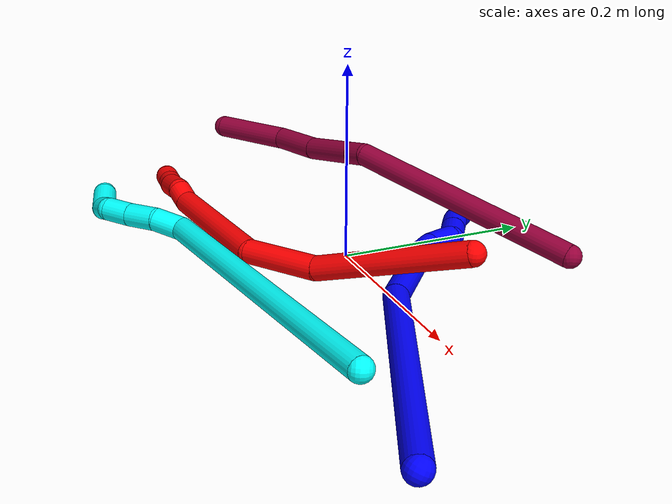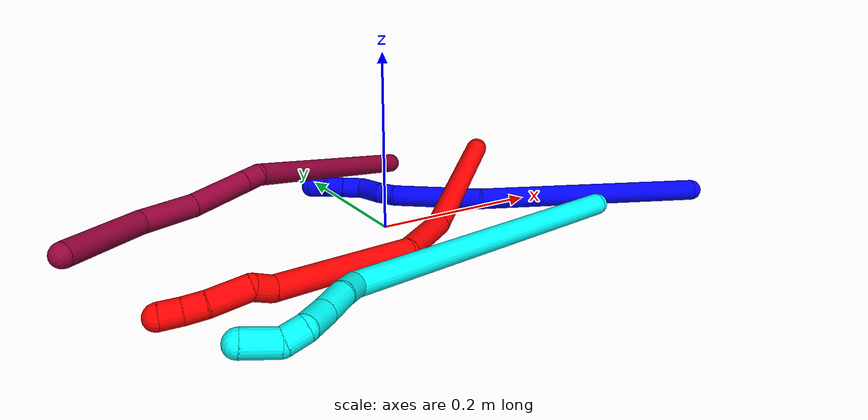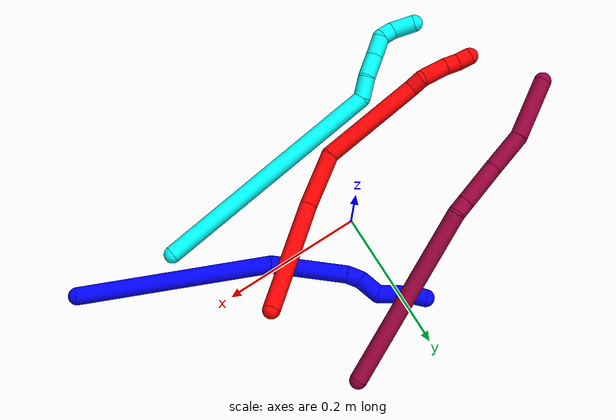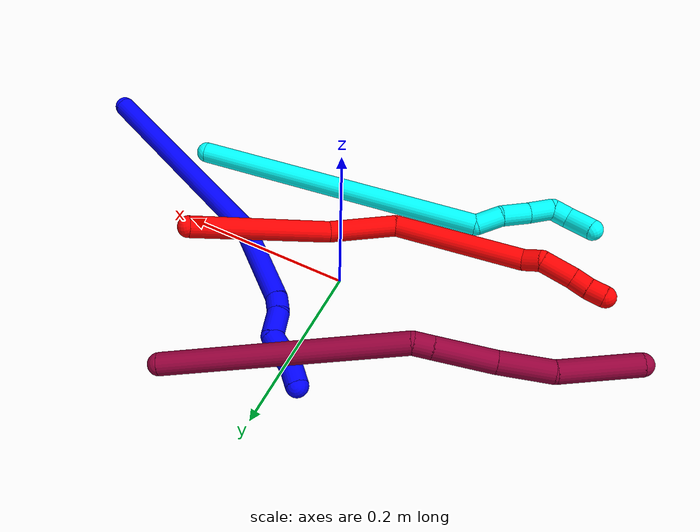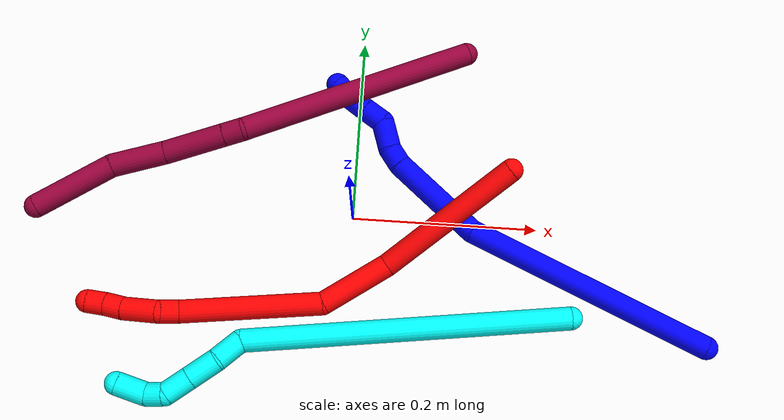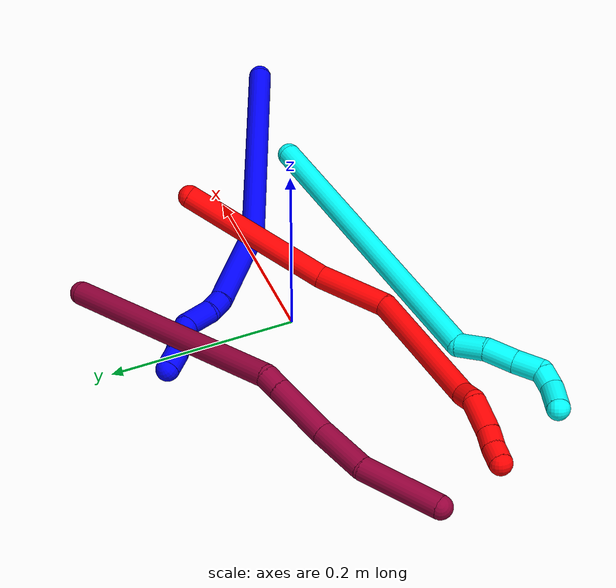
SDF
<sdf version="1.7">
 <world name="default">
  <model name="1">
   <static>0</static>
   <link name="1">
    <collision name="collision-cylinder-e_1_1_4">
     <pose>-0.116597 0.062584 -0.035989 -2.09267 -1.01639 1.53292</pose>
     <geometry><cylinder><radius>0.0125</radius><length>0.274276</length></cylinder></geometry>
     <surface>
      <friction><ode><mu>1.16</mu><mu2>1.16</mu2><slip1>0</slip1><slip2>0</slip2></ode></friction>
      <contact><ode><kp>1e+06</kp><kd>1</kd><max_vel>0</max_vel><min_depth>0.001</min_depth></ode></contact>
     </surface>
    </collision>
    <visual name="visual-cylinder-e_1_1_4">
     <pose>-0.116597 0.062584 -0.035989 -2.09267 -1.01639 1.53292</pose>
     <geometry><cylinder><radius>0.0125</radius><length>0.274276</length></cylinder></geometry>
     <material><ambient>0 0 1 1</ambient></material>
    </visual>
    <collision name="collision-cylinder-e_2_4_5">
     <pose>-0.281978 0.135313 -0.091669 -2.66589 -1.14458 2.4217</pose>
     <geometry><cylinder><radius>0.0125</radius><length>0.107154</length></cylinder></geometry>
     <surface>
      <friction><ode><mu>1.16</mu><mu2>1.16</mu2><slip1>0</slip1><slip2>0</slip2></ode></friction>
      <contact><ode><kp>1e+06</kp><kd>1</kd><max_vel>0</max_vel><min_depth>0.001</min_depth></ode></contact>
     </surface>
    </collision>
    <visual name="visual-cylinder-e_2_4_5">
     <pose>-0.281978 0.135313 -0.091669 -2.66589 -1.14458 2.4217</pose>
     <geometry><cylinder><radius>0.0125</radius><length>0.107154</length></cylinder></geometry>
     <material><ambient>0 0 1 1</ambient></material>
    </visual>
    <collision name="collision-cylinder-e_3_5_6">
     <pose>-0.339688 0.145139 -0.116277 3.07688 -1.06649 -3.03204</pose>
     <geometry><cylinder><radius>0.0125</radius><length>0.020391</length></cylinder></geometry>
     <surface>
      <friction><ode><mu>1.16</mu><mu2>1.16</mu2><slip1>0</slip1><slip2>0</slip2></ode></friction>
      <contact><ode><kp>1e+06</kp><kd>1</kd><max_vel>0</max_vel><min_depth>0.001</min_depth></ode></contact>
     </surface>
    </collision>
    <visual name="visual-cylinder-e_3_5_6">
     <pose>-0.339688 0.145139 -0.116277 3.07688 -1.06649 -3.03204</pose>
     <geometry><cylinder><radius>0.0125</radius><length>0.020391</length></cylinder></geometry>
     <material><ambient>0 0 1 1</ambient></material>
    </visual>
    <collision name="collision-cylinder-e_4_6_7">
     <pose>-0.36118 0.139467 -0.129032 2.54247 -0.923789 -2.03098</pose>
     <geometry><cylinder><radius>0.0125</radius><length>0.031495</length></cylinder></geometry>
     <surface>
      <friction><ode><mu>1.16</mu><mu2>1.16</mu2><slip1>0</slip1><slip2>0</slip2></ode></friction>
      <contact><ode><kp>1e+06</kp><kd>1</kd><max_vel>0</max_vel><min_depth>0.001</min_depth></ode></contact>
     </surface>
    </collision>
    <visual name="visual-cylinder-e_4_6_7">
     <pose>-0.36118 0.139467 -0.129032 2.54247 -0.923789 -2.03098</pose>
     <geometry><cylinder><radius>0.0125</radius><length>0.031495</length></cylinder></geometry>
     <material><ambient>0 0 1 1</ambient></material>
    </visual>
    <collision name="collision-cylinder-e_5_7_8">
     <pose>-0.384255 0.137928 -0.141032 -2.39957 -1.07799 1.98818</pose>
     <geometry><cylinder><radius>0.0125</radius><length>0.023859</length></cylinder></geometry>
     <surface>
      <friction><ode><mu>1.16</mu><mu2>1.16</mu2><slip1>0</slip1><slip2>0</slip2></ode></friction>
      <contact><ode><kp>1e+06</kp><kd>1</kd><max_vel>0</max_vel><min_depth>0.001</min_depth></ode></contact>
     </surface>
    </collision>
    <visual name="visual-cylinder-e_5_7_8">
     <pose>-0.384255 0.137928 -0.141032 -2.39957 -1.07799 1.98818</pose>
     <geometry><cylinder><radius>0.0125</radius><length>0.023859</length></cylinder></geometry>
     <material><ambient>0 0 1 1</ambient></material>
    </visual>
    <collision name="collision-cylinder-e_6_8_9">
     <pose>-0.404079 0.144809 -0.149055 -2.47045 -1.0838 2.09144</pose>
     <geometry><cylinder><radius>0.0125</radius><length>0.021079</length></cylinder></geometry>
     <surface>
      <friction><ode><mu>1.16</mu><mu2>1.16</mu2><slip1>0</slip1><slip2>0</slip2></ode></friction>
      <contact><ode><kp>1e+06</kp><kd>1</kd><max_vel>0</max_vel><min_depth>0.001</min_depth></ode></contact>
     </surface>
    </collision>
    <visual name="visual-cylinder-e_6_8_9">
     <pose>-0.404079 0.144809 -0.149055 -2.47045 -1.0838 2.09144</pose>
     <geometry><cylinder><radius>0.0125</radius><length>0.021079</length></cylinder></geometry>
     <material><ambient>0 0 1 1</ambient></material>
    </visual>
    <collision name="collision-cylinder-e_7_9_2">
     <pose>-0.423621 0.148818 -0.156482 -2.88331 -1.22473 2.77597</pose>
     <geometry><cylinder><radius>0.0125</radius><length>0.021744</length></cylinder></geometry>
     <surface>
      <friction><ode><mu>1.16</mu><mu2>1.16</mu2><slip1>0</slip1><slip2>0</slip2></ode></friction>
      <contact><ode><kp>1e+06</kp><kd>1</kd><max_vel>0</max_vel><min_depth>0.001</min_depth></ode></contact>
     </surface>
    </collision>
    <visual name="visual-cylinder-e_7_9_2">
     <pose>-0.423621 0.148818 -0.156482 -2.88331 -1.22473 2.77597</pose>
     <geometry><cylinder><radius>0.0125</radius><length>0.021744</length></cylinder></geometry>
     <material><ambient>0 0 1 1</ambient></material>
    </visual>
    <collision name="collision-sphere-2">
     <pose>-0.433848 0.14976 -0.160048 0 -0 0</pose>
     <geometry><sphere><radius>0.0125</radius></sphere></geometry>
     <surface>
      <friction><ode><mu>1.16</mu><mu2>1.16</mu2><slip1>0</slip1><slip2>0</slip2></ode></friction>
      <contact><ode><kp>1e+06</kp><kd>1</kd><max_vel>0</max_vel><min_depth>0.001</min_depth></ode></contact>
     </surface>
    </collision>
    <visual name="visual-sphere-2">
     <pose>-0.433848 0.14976 -0.160048 0 -0 0</pose>
     <geometry><sphere><radius>0.0125</radius></sphere></geometry>
     <material><ambient>0 0 1 1</ambient></material>
    </visual>
    <collision name="collision-sphere-9">
     <pose>-0.413394 0.147876 -0.152917 0 -0 0</pose>
     <geometry><sphere><radius>0.0125</radius></sphere></geometry>
     <surface>
      <friction><ode><mu>1.16</mu><mu2>1.16</mu2><slip1>0</slip1><slip2>0</slip2></ode></friction>
      <contact><ode><kp>1e+06</kp><kd>1</kd><max_vel>0</max_vel><min_depth>0.001</min_depth></ode></contact>
     </surface>
    </collision>
    <visual name="visual-sphere-9">
     <pose>-0.413394 0.147876 -0.152917 0 -0 0</pose>
     <geometry><sphere><radius>0.0125</radius></sphere></geometry>
     <material><ambient>0 0 1 1</ambient></material>
    </visual>
    <collision name="collision-sphere-4">
     <pose>-0.233194 0.125169 -0.071978 0 -0 0</pose>
     <geometry><sphere><radius>0.0125</radius></sphere></geometry>
     <surface>
      <friction><ode><mu>1.16</mu><mu2>1.16</mu2><slip1>0</slip1><slip2>0</slip2></ode></friction>
      <contact><ode><kp>1e+06</kp><kd>1</kd><max_vel>0</max_vel><min_depth>0.001</min_depth></ode></contact>
     </surface>
    </collision>
    <visual name="visual-sphere-4">
     <pose>-0.233194 0.125169 -0.071978 0 -0 0</pose>
     <geometry><sphere><radius>0.0125</radius></sphere></geometry>
     <material><ambient>0 0 1 1</ambient></material>
    </visual>
    <collision name="collision-sphere-1">
     <geometry><sphere><radius>0.0125</radius></sphere></geometry>
     <surface>
      <friction><ode><mu>1.16</mu><mu2>1.16</mu2><slip1>0</slip1><slip2>0</slip2></ode></friction>
      <contact><ode><kp>1e+06</kp><kd>1</kd><max_vel>0</max_vel><min_depth>0.001</min_depth></ode></contact>
     </surface>
    </collision>
    <visual name="visual-sphere-1">
     <geometry><sphere><radius>0.0125</radius></sphere></geometry>
     <material><ambient>0 0 1 1</ambient></material>
    </visual>
    <collision name="collision-sphere-8">
     <pose>-0.394765 0.141742 -0.145192 0 -0 0</pose>
     <geometry><sphere><radius>0.0125</radius></sphere></geometry>
     <surface>
      <friction><ode><mu>1.16</mu><mu2>1.16</mu2><slip1>0</slip1><slip2>0</slip2></ode></friction>
      <contact><ode><kp>1e+06</kp><kd>1</kd><max_vel>0</max_vel><min_depth>0.001</min_depth></ode></contact>
     </surface>
    </collision>
    <visual name="visual-sphere-8">
     <pose>-0.394765 0.141742 -0.145192 0 -0 0</pose>
     <geometry><sphere><radius>0.0125</radius></sphere></geometry>
     <material><ambient>0 0 1 1</ambient></material>
    </visual>
    <collision name="collision-sphere-5">
     <pose>-0.330762 0.145457 -0.11136 0 -0 0</pose>
     <geometry><sphere><radius>0.0125</radius></sphere></geometry>
     <surface>
      <friction><ode><mu>1.16</mu><mu2>1.16</mu2><slip1>0</slip1><slip2>0</slip2></ode></friction>
      <contact><ode><kp>1e+06</kp><kd>1</kd><max_vel>0</max_vel><min_depth>0.001</min_depth></ode></contact>
     </surface>
    </collision>
    <visual name="visual-sphere-5">
     <pose>-0.330762 0.145457 -0.11136 0 -0 0</pose>
     <geometry><sphere><radius>0.0125</radius></sphere></geometry>
     <material><ambient>0 0 1 1</ambient></material>
    </visual>
    <collision name="collision-sphere-6">
     <pose>-0.348615 0.14482 -0.121193 0 -0 0</pose>
     <geometry><sphere><radius>0.0125</radius></sphere></geometry>
     <surface>
      <friction><ode><mu>1.16</mu><mu2>1.16</mu2><slip1>0</slip1><slip2>0</slip2></ode></friction>
      <contact><ode><kp>1e+06</kp><kd>1</kd><max_vel>0</max_vel><min_depth>0.001</min_depth></ode></contact>
     </surface>
    </collision>
    <visual name="visual-sphere-6">
     <pose>-0.348615 0.14482 -0.121193 0 -0 0</pose>
     <geometry><sphere><radius>0.0125</radius></sphere></geometry>
     <material><ambient>0 0 1 1</ambient></material>
    </visual>
    <collision name="collision-sphere-7">
     <pose>-0.373745 0.134114 -0.136872 0 -0 0</pose>
     <geometry><sphere><radius>0.0125</radius></sphere></geometry>
     <surface>
      <friction><ode><mu>1.16</mu><mu2>1.16</mu2><slip1>0</slip1><slip2>0</slip2></ode></friction>
      <contact><ode><kp>1e+06</kp><kd>1</kd><max_vel>0</max_vel><min_depth>0.001</min_depth></ode></contact>
     </surface>
    </collision>
    <visual name="visual-sphere-7">
     <pose>-0.373745 0.134114 -0.136872 0 -0 0</pose>
     <geometry><sphere><radius>0.0125</radius></sphere></geometry>
     <material><ambient>0 0 1 1</ambient></material>
    </visual>
    <inertial>
     <pose>-0.214788 0.097192 -0.072076 0 -0 0</pose>
     <mass>0.5</mass>
     <inertia>
      <ixx>0.000903</ixx>
      <ixy>0</ixy>
      <ixz>0</ixz>
      <iyy>0.002302</iyy>
      <iyz>0</iyz>
      <izz>0.000755</izz>
     </inertia>
    </inertial>
   </link>
   <pose>0.381117 -0.116056 0.011761 2.81207 -0.430287 -0.760575</pose>
  </model>
  <model name="2">
   <static>0</static>
   <link name="2">
    <collision name="collision-cylinder-e_1_1_4">
     <pose>-0.0543 -0.049568 -0.039005 2.23749 -0.710783 -1.30523</pose>
     <geometry><cylinder><radius>0.0125</radius><length>0.166456</length></cylinder></geometry>
     <surface>
      <friction><ode><mu>1.16</mu><mu2>1.16</mu2><slip1>0</slip1><slip2>0</slip2></ode></friction>
      <contact><ode><kp>1e+06</kp><kd>1</kd><max_vel>0</max_vel><min_depth>0.001</min_depth></ode></contact>
     </surface>
    </collision>
    <visual name="visual-cylinder-e_1_1_4">
     <pose>-0.0543 -0.049568 -0.039005 2.23749 -0.710783 -1.30523</pose>
     <geometry><cylinder><radius>0.0125</radius><length>0.166456</length></cylinder></geometry>
     <material><ambient>1 0 0 1</ambient></material>
    </visual>
    <collision name="collision-cylinder-e_2_4_5">
     <pose>-0.141131 -0.120472 -0.087082 1.97285 -0.951593 -1.32365</pose>
     <geometry><cylinder><radius>0.0125</radius><length>0.079894</length></cylinder></geometry>
     <surface>
      <friction><ode><mu>1.16</mu><mu2>1.16</mu2><slip1>0</slip1><slip2>0</slip2></ode></friction>
      <contact><ode><kp>1e+06</kp><kd>1</kd><max_vel>0</max_vel><min_depth>0.001</min_depth></ode></contact>
     </surface>
    </collision>
    <visual name="visual-cylinder-e_2_4_5">
     <pose>-0.141131 -0.120472 -0.087082 1.97285 -0.951593 -1.32365</pose>
     <geometry><cylinder><radius>0.0125</radius><length>0.079894</length></cylinder></geometry>
     <material><ambient>1 0 0 1</ambient></material>
    </visual>
    <collision name="collision-cylinder-e_3_5_6">
     <pose>-0.246547 -0.148079 -0.117651 2.85776 -1.27272 -2.75958</pose>
     <geometry><cylinder><radius>0.0125</radius><length>0.152496</length></cylinder></geometry>
     <surface>
      <friction><ode><mu>1.16</mu><mu2>1.16</mu2><slip1>0</slip1><slip2>0</slip2></ode></friction>
      <contact><ode><kp>1e+06</kp><kd>1</kd><max_vel>0</max_vel><min_depth>0.001</min_depth></ode></contact>
     </surface>
    </collision>
    <visual name="visual-cylinder-e_3_5_6">
     <pose>-0.246547 -0.148079 -0.117651 2.85776 -1.27272 -2.75958</pose>
     <geometry><cylinder><radius>0.0125</radius><length>0.152496</length></cylinder></geometry>
     <material><ambient>1 0 0 1</ambient></material>
    </visual>
    <collision name="collision-cylinder-e_4_6_7">
     <pose>-0.330114 -0.154778 -0.138539 0.613105 -1.50119 -0.574152</pose>
     <geometry><cylinder><radius>0.0125</radius><length>0.021415</length></cylinder></geometry>
     <surface>
      <friction><ode><mu>1.16</mu><mu2>1.16</mu2><slip1>0</slip1><slip2>0</slip2></ode></friction>
      <contact><ode><kp>1e+06</kp><kd>1</kd><max_vel>0</max_vel><min_depth>0.001</min_depth></ode></contact>
     </surface>
    </collision>
    <visual name="visual-cylinder-e_4_6_7">
     <pose>-0.330114 -0.154778 -0.138539 0.613105 -1.50119 -0.574152</pose>
     <geometry><cylinder><radius>0.0125</radius><length>0.021415</length></cylinder></geometry>
     <material><ambient>1 0 0 1</ambient></material>
    </visual>
    <collision name="collision-cylinder-e_5_7_8">
     <pose>-0.357824 -0.153846 -0.14716 -2.99525 -1.06952 2.89534</pose>
     <geometry><cylinder><radius>0.0125</radius><length>0.038833</length></cylinder></geometry>
     <surface>
      <friction><ode><mu>1.16</mu><mu2>1.16</mu2><slip1>0</slip1><slip2>0</slip2></ode></friction>
      <contact><ode><kp>1e+06</kp><kd>1</kd><max_vel>0</max_vel><min_depth>0.001</min_depth></ode></contact>
     </surface>
    </collision>
    <visual name="visual-cylinder-e_5_7_8">
     <pose>-0.357824 -0.153846 -0.14716 -2.99525 -1.06952 2.89534</pose>
     <geometry><cylinder><radius>0.0125</radius><length>0.038833</length></cylinder></geometry>
     <material><ambient>1 0 0 1</ambient></material>
    </visual>
    <collision name="collision-cylinder-e_6_8_9">
     <pose>-0.383787 -0.150336 -0.160911 -2.6978 -1.06026 2.40667</pose>
     <geometry><cylinder><radius>0.0125</radius><length>0.020484</length></cylinder></geometry>
     <surface>
      <friction><ode><mu>1.16</mu><mu2>1.16</mu2><slip1>0</slip1><slip2>0</slip2></ode></friction>
      <contact><ode><kp>1e+06</kp><kd>1</kd><max_vel>0</max_vel><min_depth>0.001</min_depth></ode></contact>
     </surface>
    </collision>
    <visual name="visual-cylinder-e_6_8_9">
     <pose>-0.383787 -0.150336 -0.160911 -2.6978 -1.06026 2.40667</pose>
     <geometry><cylinder><radius>0.0125</radius><length>0.020484</length></cylinder></geometry>
     <material><ambient>1 0 0 1</ambient></material>
    </visual>
    <collision name="collision-cylinder-e_7_9_2">
     <pose>-0.40224 -0.146812 -0.168866 -2.76076 -1.20002 2.59235</pose>
     <geometry><cylinder><radius>0.0125</radius><length>0.020422</length></cylinder></geometry>
     <surface>
      <friction><ode><mu>1.16</mu><mu2>1.16</mu2><slip1>0</slip1><slip2>0</slip2></ode></friction>
      <contact><ode><kp>1e+06</kp><kd>1</kd><max_vel>0</max_vel><min_depth>0.001</min_depth></ode></contact>
     </surface>
    </collision>
    <visual name="visual-cylinder-e_7_9_2">
     <pose>-0.40224 -0.146812 -0.168866 -2.76076 -1.20002 2.59235</pose>
     <geometry><cylinder><radius>0.0125</radius><length>0.020422</length></cylinder></geometry>
     <material><ambient>1 0 0 1</ambient></material>
    </visual>
    <collision name="collision-sphere-2">
     <pose>-0.411758 -0.145437 -0.172301 0 -0 0</pose>
     <geometry><sphere><radius>0.0125</radius></sphere></geometry>
     <surface>
      <friction><ode><mu>1.16</mu><mu2>1.16</mu2><slip1>0</slip1><slip2>0</slip2></ode></friction>
      <contact><ode><kp>1e+06</kp><kd>1</kd><max_vel>0</max_vel><min_depth>0.001</min_depth></ode></contact>
     </surface>
    </collision>
    <visual name="visual-sphere-2">
     <pose>-0.411758 -0.145437 -0.172301 0 -0 0</pose>
     <geometry><sphere><radius>0.0125</radius></sphere></geometry>
     <material><ambient>1 0 0 1</ambient></material>
    </visual>
    <collision name="collision-sphere-9">
     <pose>-0.392723 -0.148188 -0.165431 0 -0 0</pose>
     <geometry><sphere><radius>0.0125</radius></sphere></geometry>
     <surface>
      <friction><ode><mu>1.16</mu><mu2>1.16</mu2><slip1>0</slip1><slip2>0</slip2></ode></friction>
      <contact><ode><kp>1e+06</kp><kd>1</kd><max_vel>0</max_vel><min_depth>0.001</min_depth></ode></contact>
     </surface>
    </collision>
    <visual name="visual-sphere-9">
     <pose>-0.392723 -0.148188 -0.165431 0 -0 0</pose>
     <geometry><sphere><radius>0.0125</radius></sphere></geometry>
     <material><ambient>1 0 0 1</ambient></material>
    </visual>
    <collision name="collision-sphere-4">
     <pose>-0.1086 -0.099136 -0.07801 0 -0 0</pose>
     <geometry><sphere><radius>0.0125</radius></sphere></geometry>
     <surface>
      <friction><ode><mu>1.16</mu><mu2>1.16</mu2><slip1>0</slip1><slip2>0</slip2></ode></friction>
      <contact><ode><kp>1e+06</kp><kd>1</kd><max_vel>0</max_vel><min_depth>0.001</min_depth></ode></contact>
     </surface>
    </collision>
    <visual name="visual-sphere-4">
     <pose>-0.1086 -0.099136 -0.07801 0 -0 0</pose>
     <geometry><sphere><radius>0.0125</radius></sphere></geometry>
     <material><ambient>1 0 0 1</ambient></material>
    </visual>
    <collision name="collision-sphere-1">
     <geometry><sphere><radius>0.0125</radius></sphere></geometry>
     <surface>
      <friction><ode><mu>1.16</mu><mu2>1.16</mu2><slip1>0</slip1><slip2>0</slip2></ode></friction>
      <contact><ode><kp>1e+06</kp><kd>1</kd><max_vel>0</max_vel><min_depth>0.001</min_depth></ode></contact>
     </surface>
    </collision>
    <visual name="visual-sphere-1">
     <geometry><sphere><radius>0.0125</radius></sphere></geometry>
     <material><ambient>1 0 0 1</ambient></material>
    </visual>
    <collision name="collision-sphere-8">
     <pose>-0.374851 -0.152485 -0.156391 0 -0 0</pose>
     <geometry><sphere><radius>0.0125</radius></sphere></geometry>
     <surface>
      <friction><ode><mu>1.16</mu><mu2>1.16</mu2><slip1>0</slip1><slip2>0</slip2></ode></friction>
      <contact><ode><kp>1e+06</kp><kd>1</kd><max_vel>0</max_vel><min_depth>0.001</min_depth></ode></contact>
     </surface>
    </collision>
    <visual name="visual-sphere-8">
     <pose>-0.374851 -0.152485 -0.156391 0 -0 0</pose>
     <geometry><sphere><radius>0.0125</radius></sphere></geometry>
     <material><ambient>1 0 0 1</ambient></material>
    </visual>
    <collision name="collision-sphere-5">
     <pose>-0.173661 -0.141808 -0.096154 0 -0 0</pose>
     <geometry><sphere><radius>0.0125</radius></sphere></geometry>
     <surface>
      <friction><ode><mu>1.16</mu><mu2>1.16</mu2><slip1>0</slip1><slip2>0</slip2></ode></friction>
      <contact><ode><kp>1e+06</kp><kd>1</kd><max_vel>0</max_vel><min_depth>0.001</min_depth></ode></contact>
     </surface>
    </collision>
    <visual name="visual-sphere-5">
     <pose>-0.173661 -0.141808 -0.096154 0 -0 0</pose>
     <geometry><sphere><radius>0.0125</radius></sphere></geometry>
     <material><ambient>1 0 0 1</ambient></material>
    </visual>
    <collision name="collision-sphere-6">
     <pose>-0.319433 -0.154349 -0.139148 0 -0 0</pose>
     <geometry><sphere><radius>0.0125</radius></sphere></geometry>
     <surface>
      <friction><ode><mu>1.16</mu><mu2>1.16</mu2><slip1>0</slip1><slip2>0</slip2></ode></friction>
      <contact><ode><kp>1e+06</kp><kd>1</kd><max_vel>0</max_vel><min_depth>0.001</min_depth></ode></contact>
     </surface>
    </collision>
    <visual name="visual-sphere-6">
     <pose>-0.319433 -0.154349 -0.139148 0 -0 0</pose>
     <geometry><sphere><radius>0.0125</radius></sphere></geometry>
     <material><ambient>1 0 0 1</ambient></material>
    </visual>
    <collision name="collision-sphere-7">
     <pose>-0.340796 -0.155206 -0.13793 0 -0 0</pose>
     <geometry><sphere><radius>0.0125</radius></sphere></geometry>
     <surface>
      <friction><ode><mu>1.16</mu><mu2>1.16</mu2><slip1>0</slip1><slip2>0</slip2></ode></friction>
      <contact><ode><kp>1e+06</kp><kd>1</kd><max_vel>0</max_vel><min_depth>0.001</min_depth></ode></contact>
     </surface>
    </collision>
    <visual name="visual-sphere-7">
     <pose>-0.340796 -0.155206 -0.13793 0 -0 0</pose>
     <geometry><sphere><radius>0.0125</radius></sphere></geometry>
     <material><ambient>1 0 0 1</ambient></material>
    </visual>
    <inertial>
     <pose>-0.189905 -0.111648 -0.093635 0 -0 0</pose>
     <mass>0.5</mass>
     <inertia>
      <ixx>-0.000377</ixx>
      <ixy>0</ixy>
      <ixz>0</ixz>
      <iyy>0.000114</iyy>
      <iyz>0</iyz>
      <izz>0.000858</izz>
     </inertia>
    </inertial>
   </link>
   <pose>0.163731 0.050842 0.059449 0.073109 0.311316 0.06362</pose>
  </model>
  <model name="3">
   <static>0</static>
   <link name="3">
    <collision name="collision-cylinder-e_1_1_4">
     <pose>-0.144507 -0.022267 0.096049 0.227804 -0.972054 -0.120724</pose>
     <geometry><cylinder><radius>0.0125</radius><length>0.349877</length></cylinder></geometry>
     <surface>
      <friction><ode><mu>1.16</mu><mu2>1.16</mu2><slip1>0</slip1><slip2>0</slip2></ode></friction>
      <contact><ode><kp>1e+06</kp><kd>1</kd><max_vel>0</max_vel><min_depth>0.001</min_depth></ode></contact>
     </surface>
    </collision>
    <visual name="visual-cylinder-e_1_1_4">
     <pose>-0.144507 -0.022267 0.096049 0.227804 -0.972054 -0.120724</pose>
     <geometry><cylinder><radius>0.0125</radius><length>0.349877</length></cylinder></geometry>
     <material><ambient>0.003922 1 0.996078 1</ambient></material>
    </visual>
    <collision name="collision-cylinder-e_2_4_5">
     <pose>-0.294638 -0.04295 0.206939 -0.106335 -0.360307 0.019384</pose>
     <geometry><cylinder><radius>0.0125</radius><length>0.0319</length></cylinder></geometry>
     <surface>
      <friction><ode><mu>1.16</mu><mu2>1.16</mu2><slip1>0</slip1><slip2>0</slip2></ode></friction>
      <contact><ode><kp>1e+06</kp><kd>1</kd><max_vel>0</max_vel><min_depth>0.001</min_depth></ode></contact>
     </surface>
    </collision>
    <visual name="visual-cylinder-e_2_4_5">
     <pose>-0.294638 -0.04295 0.206939 -0.106335 -0.360307 0.019384</pose>
     <geometry><cylinder><radius>0.0125</radius><length>0.0319</length></cylinder></geometry>
     <material><ambient>0.003922 1 0.996078 1</ambient></material>
    </visual>
    <collision name="collision-cylinder-e_3_5_6">
     <pose>-0.307636 -0.043592 0.236748 0.147694 -0.4535 -0.034134</pose>
     <geometry><cylinder><radius>0.0125</radius><length>0.033666</length></cylinder></geometry>
     <surface>
      <friction><ode><mu>1.16</mu><mu2>1.16</mu2><slip1>0</slip1><slip2>0</slip2></ode></friction>
      <contact><ode><kp>1e+06</kp><kd>1</kd><max_vel>0</max_vel><min_depth>0.001</min_depth></ode></contact>
     </surface>
    </collision>
    <visual name="visual-cylinder-e_3_5_6">
     <pose>-0.307636 -0.043592 0.236748 0.147694 -0.4535 -0.034134</pose>
     <geometry><cylinder><radius>0.0125</radius><length>0.033666</length></cylinder></geometry>
     <material><ambient>0.003922 1 0.996078 1</ambient></material>
    </visual>
    <collision name="collision-cylinder-e_4_6_7">
     <pose>-0.321472 -0.04668 0.26499 0.064788 -0.452185 -0.014908</pose>
     <geometry><cylinder><radius>0.0125</radius><length>0.02958</length></cylinder></geometry>
     <surface>
      <friction><ode><mu>1.16</mu><mu2>1.16</mu2><slip1>0</slip1><slip2>0</slip2></ode></friction>
      <contact><ode><kp>1e+06</kp><kd>1</kd><max_vel>0</max_vel><min_depth>0.001</min_depth></ode></contact>
     </surface>
    </collision>
    <visual name="visual-cylinder-e_4_6_7">
     <pose>-0.321472 -0.04668 0.26499 0.064788 -0.452185 -0.014908</pose>
     <geometry><cylinder><radius>0.0125</radius><length>0.02958</length></cylinder></geometry>
     <material><ambient>0.003922 1 0.996078 1</ambient></material>
    </visual>
    <collision name="collision-cylinder-e_5_7_8">
     <pose>-0.336401 -0.051808 0.283205 0.712399 -0.914018 -0.361913</pose>
     <geometry><cylinder><radius>0.0125</radius><length>0.02138</length></cylinder></geometry>
     <surface>
      <friction><ode><mu>1.16</mu><mu2>1.16</mu2><slip1>0</slip1><slip2>0</slip2></ode></friction>
      <contact><ode><kp>1e+06</kp><kd>1</kd><max_vel>0</max_vel><min_depth>0.001</min_depth></ode></contact>
     </surface>
    </collision>
    <visual name="visual-cylinder-e_5_7_8">
     <pose>-0.336401 -0.051808 0.283205 0.712399 -0.914018 -0.361913</pose>
     <geometry><cylinder><radius>0.0125</radius><length>0.02138</length></cylinder></geometry>
     <material><ambient>0.003922 1 0.996078 1</ambient></material>
    </visual>
    <collision name="collision-cylinder-e_6_8_2">
     <pose>-0.361409 -0.055863 0.291062 -0.072186 -1.39575 0.060547</pose>
     <geometry><cylinder><radius>0.0125</radius><length>0.033598</length></cylinder></geometry>
     <surface>
      <friction><ode><mu>1.16</mu><mu2>1.16</mu2><slip1>0</slip1><slip2>0</slip2></ode></friction>
      <contact><ode><kp>1e+06</kp><kd>1</kd><max_vel>0</max_vel><min_depth>0.001</min_depth></ode></contact>
     </surface>
    </collision>
    <visual name="visual-cylinder-e_6_8_2">
     <pose>-0.361409 -0.055863 0.291062 -0.072186 -1.39575 0.060547</pose>
     <geometry><cylinder><radius>0.0125</radius><length>0.033598</length></cylinder></geometry>
     <material><ambient>0.003922 1 0.996078 1</ambient></material>
    </visual>
    <collision name="collision-sphere-2">
     <pose>-0.377951 -0.055652 0.29398 0 -0 0</pose>
     <geometry><sphere><radius>0.0125</radius></sphere></geometry>
     <surface>
      <friction><ode><mu>1.16</mu><mu2>1.16</mu2><slip1>0</slip1><slip2>0</slip2></ode></friction>
      <contact><ode><kp>1e+06</kp><kd>1</kd><max_vel>0</max_vel><min_depth>0.001</min_depth></ode></contact>
     </surface>
    </collision>
    <visual name="visual-sphere-2">
     <pose>-0.377951 -0.055652 0.29398 0 -0 0</pose>
     <geometry><sphere><radius>0.0125</radius></sphere></geometry>
     <material><ambient>0.003922 1 0.996078 1</ambient></material>
    </visual>
    <collision name="collision-sphere-4">
     <pose>-0.289014 -0.044534 0.192098 0 -0 0</pose>
     <geometry><sphere><radius>0.0125</radius></sphere></geometry>
     <surface>
      <friction><ode><mu>1.16</mu><mu2>1.16</mu2><slip1>0</slip1><slip2>0</slip2></ode></friction>
      <contact><ode><kp>1e+06</kp><kd>1</kd><max_vel>0</max_vel><min_depth>0.001</min_depth></ode></contact>
     </surface>
    </collision>
    <visual name="visual-sphere-4">
     <pose>-0.289014 -0.044534 0.192098 0 -0 0</pose>
     <geometry><sphere><radius>0.0125</radius></sphere></geometry>
     <material><ambient>0.003922 1 0.996078 1</ambient></material>
    </visual>
    <collision name="collision-sphere-1">
     <geometry><sphere><radius>0.0125</radius></sphere></geometry>
     <surface>
      <friction><ode><mu>1.16</mu><mu2>1.16</mu2><slip1>0</slip1><slip2>0</slip2></ode></friction>
      <contact><ode><kp>1e+06</kp><kd>1</kd><max_vel>0</max_vel><min_depth>0.001</min_depth></ode></contact>
     </surface>
    </collision>
    <visual name="visual-sphere-1">
     <geometry><sphere><radius>0.0125</radius></sphere></geometry>
     <material><ambient>0.003922 1 0.996078 1</ambient></material>
    </visual>
    <collision name="collision-sphere-8">
     <pose>-0.344867 -0.056074 0.288144 0 -0 0</pose>
     <geometry><sphere><radius>0.0125</radius></sphere></geometry>
     <surface>
      <friction><ode><mu>1.16</mu><mu2>1.16</mu2><slip1>0</slip1><slip2>0</slip2></ode></friction>
      <contact><ode><kp>1e+06</kp><kd>1</kd><max_vel>0</max_vel><min_depth>0.001</min_depth></ode></contact>
     </surface>
    </collision>
    <visual name="visual-sphere-8">
     <pose>-0.344867 -0.056074 0.288144 0 -0 0</pose>
     <geometry><sphere><radius>0.0125</radius></sphere></geometry>
     <material><ambient>0.003922 1 0.996078 1</ambient></material>
    </visual>
    <collision name="collision-sphere-5">
     <pose>-0.300261 -0.041365 0.221781 0 -0 0</pose>
     <geometry><sphere><radius>0.0125</radius></sphere></geometry>
     <surface>
      <friction><ode><mu>1.16</mu><mu2>1.16</mu2><slip1>0</slip1><slip2>0</slip2></ode></friction>
      <contact><ode><kp>1e+06</kp><kd>1</kd><max_vel>0</max_vel><min_depth>0.001</min_depth></ode></contact>
     </surface>
    </collision>
    <visual name="visual-sphere-5">
     <pose>-0.300261 -0.041365 0.221781 0 -0 0</pose>
     <geometry><sphere><radius>0.0125</radius></sphere></geometry>
     <material><ambient>0.003922 1 0.996078 1</ambient></material>
    </visual>
    <collision name="collision-sphere-6">
     <pose>-0.31501 -0.045819 0.251714 0 -0 0</pose>
     <geometry><sphere><radius>0.0125</radius></sphere></geometry>
     <surface>
      <friction><ode><mu>1.16</mu><mu2>1.16</mu2><slip1>0</slip1><slip2>0</slip2></ode></friction>
      <contact><ode><kp>1e+06</kp><kd>1</kd><max_vel>0</max_vel><min_depth>0.001</min_depth></ode></contact>
     </surface>
    </collision>
    <visual name="visual-sphere-6">
     <pose>-0.31501 -0.045819 0.251714 0 -0 0</pose>
     <geometry><sphere><radius>0.0125</radius></sphere></geometry>
     <material><ambient>0.003922 1 0.996078 1</ambient></material>
    </visual>
    <collision name="collision-sphere-7">
     <pose>-0.327935 -0.047541 0.278265 0 -0 0</pose>
     <geometry><sphere><radius>0.0125</radius></sphere></geometry>
     <surface>
      <friction><ode><mu>1.16</mu><mu2>1.16</mu2><slip1>0</slip1><slip2>0</slip2></ode></friction>
      <contact><ode><kp>1e+06</kp><kd>1</kd><max_vel>0</max_vel><min_depth>0.001</min_depth></ode></contact>
     </surface>
    </collision>
    <visual name="visual-sphere-7">
     <pose>-0.327935 -0.047541 0.278265 0 -0 0</pose>
     <geometry><sphere><radius>0.0125</radius></sphere></geometry>
     <material><ambient>0.003922 1 0.996078 1</ambient></material>
    </visual>
    <inertial>
     <pose>-0.198318 -0.029987 0.143698 0 -0 0</pose>
     <mass>0.5</mass>
     <inertia>
      <ixx>0.001744</ixx>
      <ixy>0</ixy>
      <ixz>0</ixz>
      <iyy>0.003315</iyy>
      <iyz>0</iyz>
      <izz>0.00345</izz>
     </inertia>
    </inertial>
   </link>
   <pose>0.238249 -0.094344 0.012269 1.52432 0.120449 -0.454143</pose>
  </model>
  <model name="8">
   <static>0</static>
   <link name="8">
    <collision name="collision-cylinder-e_1_1_4">
     <pose>-0.072134 -0.091706 0.063539 0.964884 -0.573946 -0.306692</pose>
     <geometry><cylinder><radius>0.0125</radius><length>0.265711</length></cylinder></geometry>
     <surface>
      <friction><ode><mu>1.16</mu><mu2>1.16</mu2><slip1>0</slip1><slip2>0</slip2></ode></friction>
      <contact><ode><kp>1e+06</kp><kd>1</kd><max_vel>0</max_vel><min_depth>0.001</min_depth></ode></contact>
     </surface>
    </collision>
    <visual name="visual-cylinder-e_1_1_4">
     <pose>-0.072134 -0.091706 0.063539 0.964884 -0.573946 -0.306692</pose>
     <geometry><cylinder><radius>0.0125</radius><length>0.265711</length></cylinder></geometry>
     <material><ambient>0.584314 0 0.227451 1</ambient></material>
    </visual>
    <collision name="collision-cylinder-e_2_4_5">
     <pose>-0.152572 -0.1892 0.129547 1.16751 -0.922333 -0.634295</pose>
     <geometry><cylinder><radius>0.0125</radius><length>0.020837</length></cylinder></geometry>
     <surface>
      <friction><ode><mu>1.16</mu><mu2>1.16</mu2><slip1>0</slip1><slip2>0</slip2></ode></friction>
      <contact><ode><kp>1e+06</kp><kd>1</kd><max_vel>0</max_vel><min_depth>0.001</min_depth></ode></contact>
     </surface>
    </collision>
    <visual name="visual-cylinder-e_2_4_5">
     <pose>-0.152572 -0.1892 0.129547 1.16751 -0.922333 -0.634295</pose>
     <geometry><cylinder><radius>0.0125</radius><length>0.020837</length></cylinder></geometry>
     <material><ambient>0.584314 0 0.227451 1</ambient></material>
    </visual>
    <collision name="collision-cylinder-e_3_5_6">
     <pose>-0.187132 -0.213424 0.13986 1.16854 -0.919 -0.632485</pose>
     <geometry><cylinder><radius>0.0125</radius><length>0.066055</length></cylinder></geometry>
     <surface>
      <friction><ode><mu>1.16</mu><mu2>1.16</mu2><slip1>0</slip1><slip2>0</slip2></ode></friction>
      <contact><ode><kp>1e+06</kp><kd>1</kd><max_vel>0</max_vel><min_depth>0.001</min_depth></ode></contact>
     </surface>
    </collision>
    <visual name="visual-cylinder-e_3_5_6">
     <pose>-0.187132 -0.213424 0.13986 1.16854 -0.919 -0.632485</pose>
     <geometry><cylinder><radius>0.0125</radius><length>0.066055</length></cylinder></geometry>
     <material><ambient>0.584314 0 0.227451 1</ambient></material>
    </visual>
    <collision name="collision-cylinder-e_4_6_7">
     <pose>-0.235182 -0.248351 0.158174 1.00513 -0.840003 -0.481392</pose>
     <geometry><cylinder><radius>0.0125</radius><length>0.058534</length></cylinder></geometry>
     <surface>
      <friction><ode><mu>1.16</mu><mu2>1.16</mu2><slip1>0</slip1><slip2>0</slip2></ode></friction>
      <contact><ode><kp>1e+06</kp><kd>1</kd><max_vel>0</max_vel><min_depth>0.001</min_depth></ode></contact>
     </surface>
    </collision>
    <visual name="visual-cylinder-e_4_6_7">
     <pose>-0.235182 -0.248351 0.158174 1.00513 -0.840003 -0.481392</pose>
     <geometry><cylinder><radius>0.0125</radius><length>0.058534</length></cylinder></geometry>
     <material><ambient>0.584314 0 0.227451 1</ambient></material>
    </visual>
    <collision name="collision-cylinder-e_5_7_2">
     <pose>-0.28277 -0.298904 0.180837 1.22703 -0.61938 -0.443243</pose>
     <geometry><cylinder><radius>0.0125</radius><length>0.088863</length></cylinder></geometry>
     <surface>
      <friction><ode><mu>1.16</mu><mu2>1.16</mu2><slip1>0</slip1><slip2>0</slip2></ode></friction>
      <contact><ode><kp>1e+06</kp><kd>1</kd><max_vel>0</max_vel><min_depth>0.001</min_depth></ode></contact>
     </surface>
    </collision>
    <visual name="visual-cylinder-e_5_7_2">
     <pose>-0.28277 -0.298904 0.180837 1.22703 -0.61938 -0.443243</pose>
     <geometry><cylinder><radius>0.0125</radius><length>0.088863</length></cylinder></geometry>
     <material><ambient>0.584314 0 0.227451 1</ambient></material>
    </visual>
    <collision name="collision-sphere-2">
     <pose>-0.308563 -0.332965 0.19303 0 -0 0</pose>
     <geometry><sphere><radius>0.0125</radius></sphere></geometry>
     <surface>
      <friction><ode><mu>1.16</mu><mu2>1.16</mu2><slip1>0</slip1><slip2>0</slip2></ode></friction>
      <contact><ode><kp>1e+06</kp><kd>1</kd><max_vel>0</max_vel><min_depth>0.001</min_depth></ode></contact>
     </surface>
    </collision>
    <visual name="visual-sphere-2">
     <pose>-0.308563 -0.332965 0.19303 0 -0 0</pose>
     <geometry><sphere><radius>0.0125</radius></sphere></geometry>
     <material><ambient>0.584314 0 0.227451 1</ambient></material>
    </visual>
    <collision name="collision-sphere-7">
     <pose>-0.256976 -0.264843 0.168644 0 -0 0</pose>
     <geometry><sphere><radius>0.0125</radius></sphere></geometry>
     <surface>
      <friction><ode><mu>1.16</mu><mu2>1.16</mu2><slip1>0</slip1><slip2>0</slip2></ode></friction>
      <contact><ode><kp>1e+06</kp><kd>1</kd><max_vel>0</max_vel><min_depth>0.001</min_depth></ode></contact>
     </surface>
    </collision>
    <visual name="visual-sphere-7">
     <pose>-0.256976 -0.264843 0.168644 0 -0 0</pose>
     <geometry><sphere><radius>0.0125</radius></sphere></geometry>
     <material><ambient>0.584314 0 0.227451 1</ambient></material>
    </visual>
    <collision name="collision-sphere-6">
     <pose>-0.213389 -0.23186 0.147704 0 -0 0</pose>
     <geometry><sphere><radius>0.0125</radius></sphere></geometry>
     <surface>
      <friction><ode><mu>1.16</mu><mu2>1.16</mu2><slip1>0</slip1><slip2>0</slip2></ode></friction>
      <contact><ode><kp>1e+06</kp><kd>1</kd><max_vel>0</max_vel><min_depth>0.001</min_depth></ode></contact>
     </surface>
    </collision>
    <visual name="visual-sphere-6">
     <pose>-0.213389 -0.23186 0.147704 0 -0 0</pose>
     <geometry><sphere><radius>0.0125</radius></sphere></geometry>
     <material><ambient>0.584314 0 0.227451 1</ambient></material>
    </visual>
    <collision name="collision-sphere-5">
     <pose>-0.160875 -0.194988 0.132017 0 -0 0</pose>
     <geometry><sphere><radius>0.0125</radius></sphere></geometry>
     <surface>
      <friction><ode><mu>1.16</mu><mu2>1.16</mu2><slip1>0</slip1><slip2>0</slip2></ode></friction>
      <contact><ode><kp>1e+06</kp><kd>1</kd><max_vel>0</max_vel><min_depth>0.001</min_depth></ode></contact>
     </surface>
    </collision>
    <visual name="visual-sphere-5">
     <pose>-0.160875 -0.194988 0.132017 0 -0 0</pose>
     <geometry><sphere><radius>0.0125</radius></sphere></geometry>
     <material><ambient>0.584314 0 0.227451 1</ambient></material>
    </visual>
    <collision name="collision-sphere-1">
     <geometry><sphere><radius>0.0125</radius></sphere></geometry>
     <surface>
      <friction><ode><mu>1.16</mu><mu2>1.16</mu2><slip1>0</slip1><slip2>0</slip2></ode></friction>
      <contact><ode><kp>1e+06</kp><kd>1</kd><max_vel>0</max_vel><min_depth>0.001</min_depth></ode></contact>
     </surface>
    </collision>
    <visual name="visual-sphere-1">
     <geometry><sphere><radius>0.0125</radius></sphere></geometry>
     <material><ambient>0.584314 0 0.227451 1</ambient></material>
    </visual>
    <collision name="collision-sphere-4">
     <pose>-0.144268 -0.183413 0.127078 0 -0 0</pose>
     <geometry><sphere><radius>0.0125</radius></sphere></geometry>
     <surface>
      <friction><ode><mu>1.16</mu><mu2>1.16</mu2><slip1>0</slip1><slip2>0</slip2></ode></friction>
      <contact><ode><kp>1e+06</kp><kd>1</kd><max_vel>0</max_vel><min_depth>0.001</min_depth></ode></contact>
     </surface>
    </collision>
    <visual name="visual-sphere-4">
     <pose>-0.144268 -0.183413 0.127078 0 -0 0</pose>
     <geometry><sphere><radius>0.0125</radius></sphere></geometry>
     <material><ambient>0.584314 0 0.227451 1</ambient></material>
    </visual>
    <inertial>
     <pose>-0.147202 -0.167012 0.108298 0 -0 0</pose>
     <mass>0.5</mass>
     <inertia>
      <ixx>0.00087</ixx>
      <ixy>0</ixy>
      <ixz>0</ixz>
      <iyy>0.000673</iyy>
      <iyz>0</iyz>
      <izz>0.002102</izz>
     </inertia>
    </inertial>
   </link>
   <pose>0.113779 0.192675 0.012597 -0.094459 -0.537942 -0.249168</pose>
  </model>
 </world>
</sdf>
